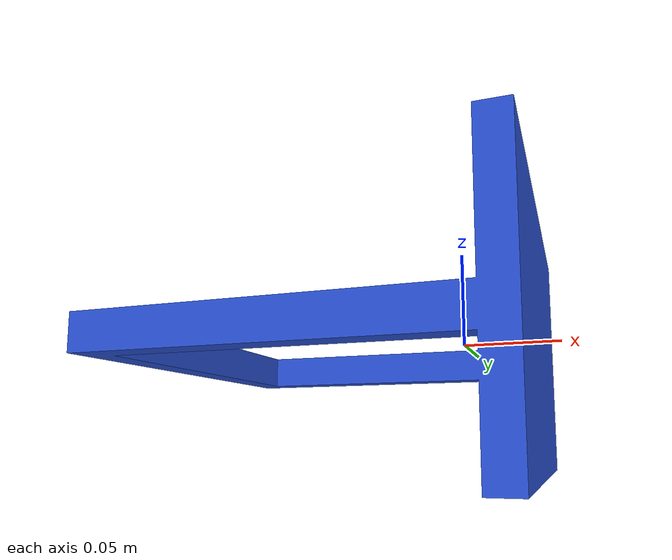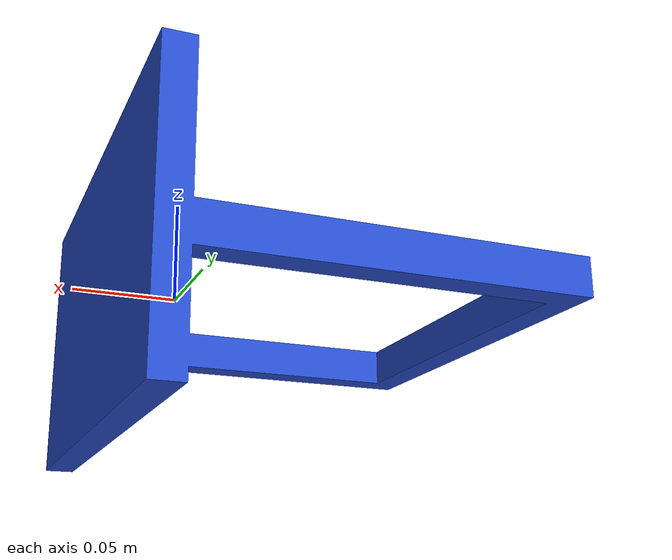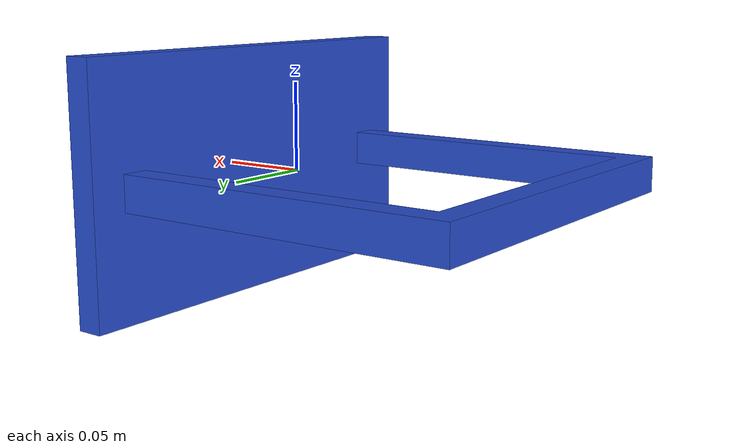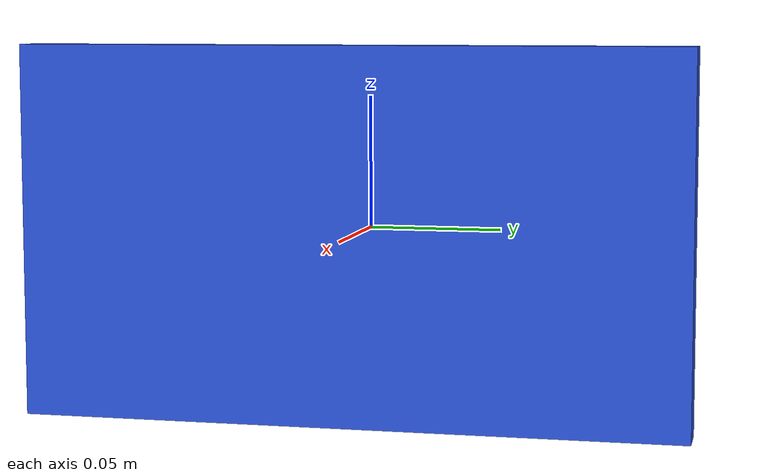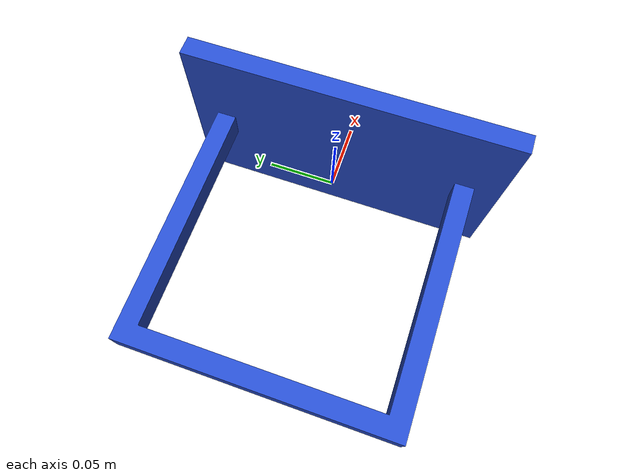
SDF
<?xml version="1.0" ?>
<sdf version="1.6">
  <model name="Square">
  <pose>0 0 0 0 0 1.57</pose>
    <link name="Square">
      <pose>0 0 0 0 0 0</pose>
      <visual name="Square_visual">
        <geometry><mesh><uri>model://Square/meshes/Square.stl</uri></mesh></geometry>
        <material>
        <script>
          <uri>file://media/materials/scripts/gazebo.material</uri>
          <name>Gazebo/Blue</name>
        </script>
        </material>
      </visual>
      <collision name="Square_collision">
        <geometry><mesh><uri>model://Square/meshes/Square.stl</uri></mesh></geometry>
      </collision>
    </link>

  </model>
</sdf>
